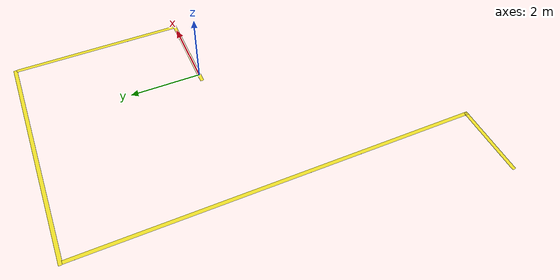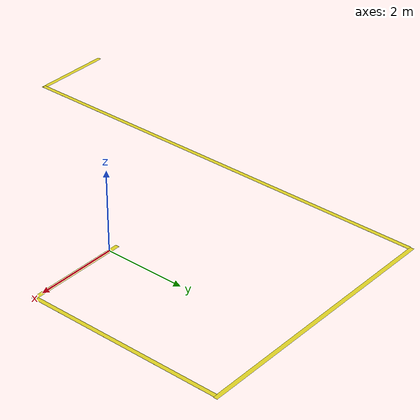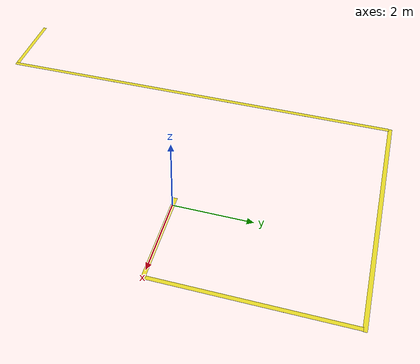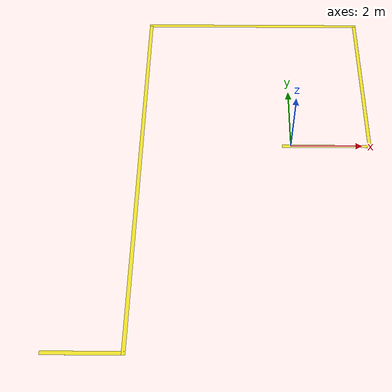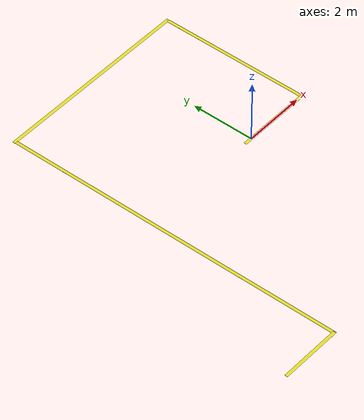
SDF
<sdf version="1.7">
 <world name="default">
  <light name="sun" type="directional">
   <pose>0 0 10 0 -0 0</pose>
   <diffuse>0.8 0.8 0.8 1</diffuse>
   <specular>0.1 0.1 0.1 1</specular>
   <attenuation>
    <range>1000</range>
    <constant>0.9</constant>
    <linear>0.01</linear>
    <quadratic>0.001</quadratic>
   </attenuation>
   <direction>-0.5 0.5 -1</direction>
   <spot><inner_angle>0</inner_angle><outer_angle>0</outer_angle><falloff>0</falloff></spot>
  </light>
  <gravity>0 0 -9.8</gravity>
  <magnetic_field>6e-06 2.3e-05 -4.2e-05</magnetic_field>
  <atmosphere type="adiabatic"/>
  <physics name="default_physics" default="0" type="ode">
   <max_step_size>0.001</max_step_size>
   <real_time_factor>1</real_time_factor>
   <real_time_update_rate>1000</real_time_update_rate>
  </physics>
  <scene><ambient>0.4 0.4 0.4 1</ambient><background>0.7 0.7 0.7 1</background><shadows>1</shadows></scene>
  <spherical_coordinates>
   <surface_model>EARTH_WGS84</surface_model>
   <latitude_deg>0</latitude_deg>
   <longitude_deg>0</longitude_deg>
   <elevation>0</elevation>
   <heading_deg>0</heading_deg>
  </spherical_coordinates>
  <model name="yellow line_1">
   <static>1</static>
   <link name="link_ground">
    <collision name="collision">
     <geometry><plane><normal>0 0 1</normal><size>0.1 6.5</size></plane></geometry>
     <surface><friction><ode><mu>100</mu><mu2>50</mu2></ode></friction></surface>
    </collision>
    <visual name="visual_ground">
     <cast_shadows>0</cast_shadows>
     <geometry><plane><normal>0 0 1</normal><size>0.1 6.5</size></plane></geometry>
     <material>
      <script><uri>file://media/materials/scripts/gazebo.material</uri><name>Gazebo/Yellow</name></script>
     </material>
    </visual>
   </link>
   <pose>-1 4.83 0 0 -0 1.57</pose>
  </model>
  <model name="yellow line_2">
   <static>1</static>
   <link name="link_ground">
    <collision name="collision">
     <geometry><plane><normal>0 0 1</normal><size>0.1 11</size></plane></geometry>
     <surface><friction><ode><mu>100</mu><mu2>50</mu2></ode></friction></surface>
    </collision>
    <visual name="visual_ground">
     <cast_shadows>0</cast_shadows>
     <geometry><plane><normal>0 0 1</normal><size>0.1 11</size></plane></geometry>
     <material>
      <script><uri>file://media/materials/scripts/gazebo.material</uri><name>Gazebo/Yellow</name></script>
     </material>
    </visual>
   </link>
   <pose>-4.2 -0.71 0 0 -0 0</pose>
  </model>
  <model name="yellow line_3">
   <static>1</static>
   <link name="link_ground">
    <collision name="collision">
     <geometry><plane><normal>0 0 1</normal><size>0.1 2</size></plane></geometry>
     <surface><friction><ode><mu>100</mu><mu2>50</mu2></ode></friction></surface>
    </collision>
    <visual name="visual_ground">
     <cast_shadows>0</cast_shadows>
     <geometry><plane><normal>0 0 1</normal><size>0.1 2</size></plane></geometry>
     <material>
      <script><uri>file://media/materials/scripts/gazebo.material</uri><name>Gazebo/Yellow</name></script>
     </material>
    </visual>
   </link>
   <pose>-5.17 -6.16 0 0 -0 1.57</pose>
  </model>
  <model name="yellow line_5">
   <static>1</static>
   <link name="link_ground">
    <collision name="collision">
     <geometry><plane><normal>0 0 1</normal><size>0.1 4.8</size></plane></geometry>
     <surface><friction><ode><mu>100</mu><mu2>50</mu2></ode></friction></surface>
    </collision>
    <visual name="visual_ground">
     <cast_shadows>0</cast_shadows>
     <geometry><plane><normal>0 0 1</normal><size>0.1 4.8</size></plane></geometry>
     <material>
      <script><uri>file://media/materials/scripts/gazebo.material</uri><name>Gazebo/Yellow</name></script>
     </material>
    </visual>
   </link>
   <pose>2.19978 2.39516 0 0 -0 0</pose>
  </model>
  <model name="yellow line_6">
   <static>1</static>
   <link name="link_ground">
    <collision name="collision">
     <geometry><plane><normal>0 0 1</normal><size>0.1 2.5</size></plane></geometry>
     <surface><friction><ode><mu>100</mu><mu2>50</mu2></ode></friction></surface>
    </collision>
    <visual name="visual_ground">
     <cast_shadows>0</cast_shadows>
     <geometry><plane><normal>0 0 1</normal><size>0.1 2.5</size></plane></geometry>
     <material>
      <script><uri>file://media/materials/scripts/gazebo.material</uri><name>Gazebo/Yellow</name></script>
     </material>
    </visual>
   </link>
   <pose>1 0 0 0 -0 1.57</pose>
  </model>
 </world>
</sdf>
